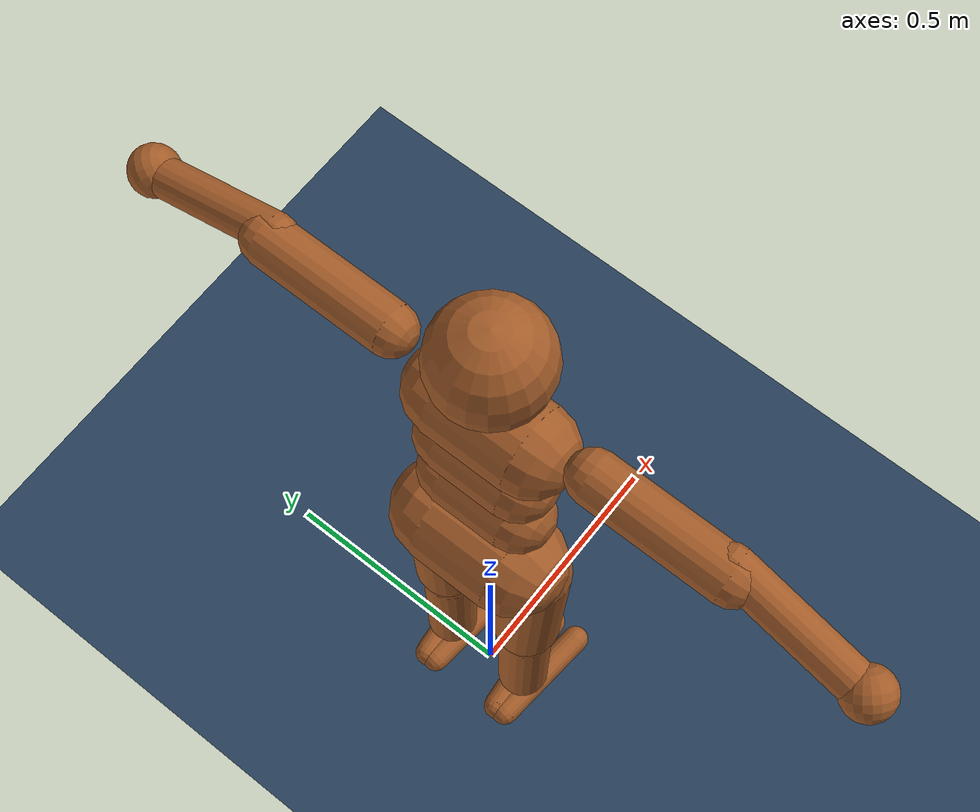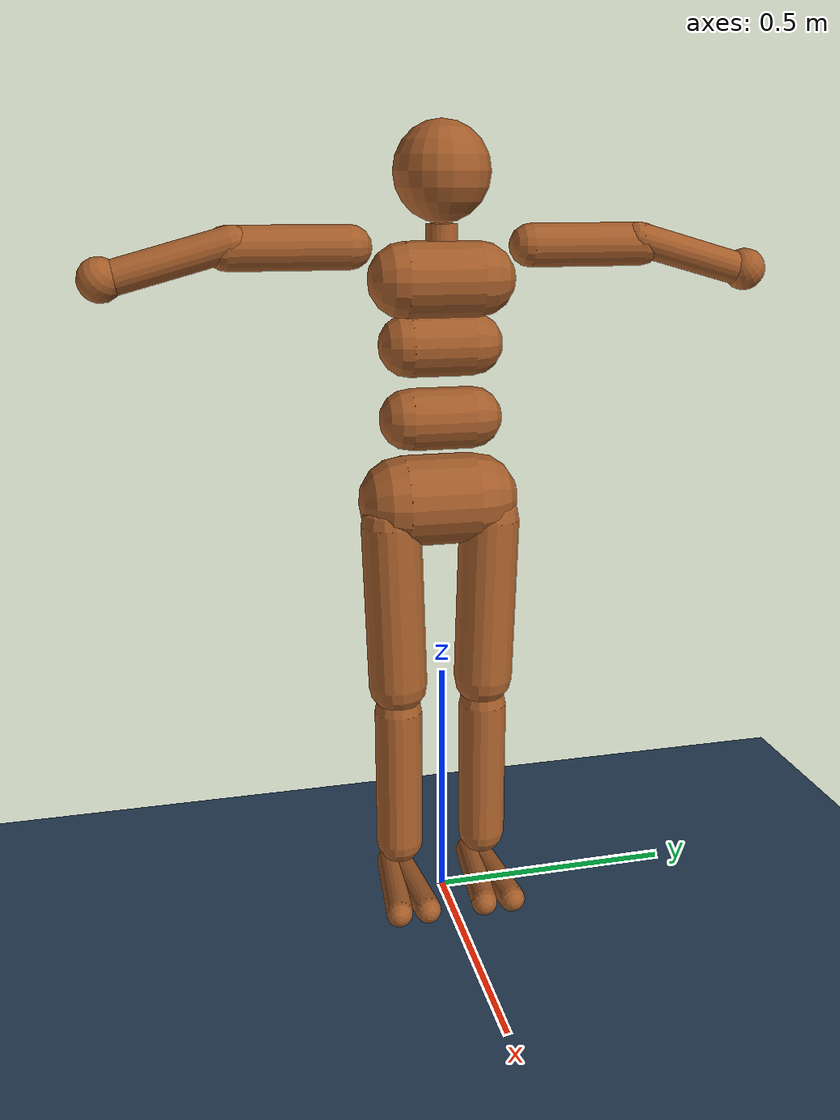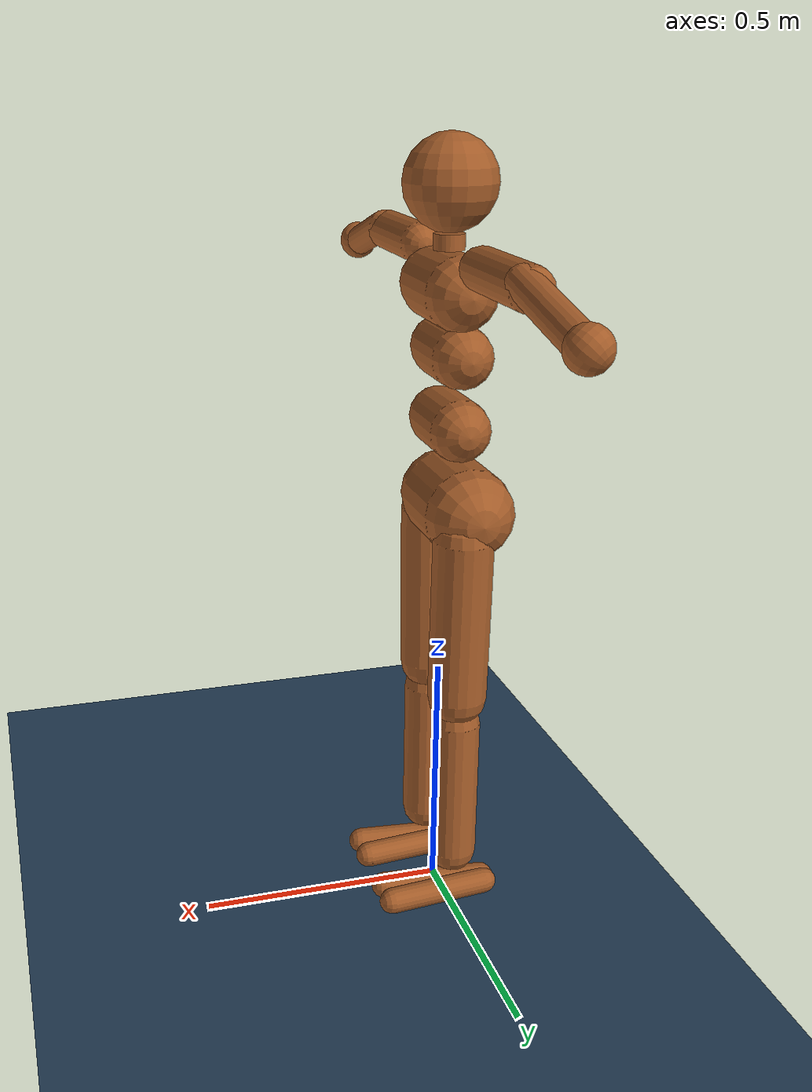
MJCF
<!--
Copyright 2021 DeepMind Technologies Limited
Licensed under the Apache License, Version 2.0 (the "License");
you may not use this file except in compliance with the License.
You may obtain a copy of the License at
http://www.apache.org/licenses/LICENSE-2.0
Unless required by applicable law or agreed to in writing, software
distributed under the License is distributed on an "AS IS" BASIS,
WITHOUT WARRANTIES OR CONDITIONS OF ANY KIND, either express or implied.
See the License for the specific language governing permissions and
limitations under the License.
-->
<mujoco model="Mannequin">
  <!-- Static humanoid model with all joints removed -->
  <option timestep="0.005"/>

  <visual>
    <map force="0.1" zfar="30"/>
    <rgba haze="0.15 0.25 0.35 1"/>
    <global offwidth="2560" offheight="1440" elevation="-20" azimuth="120"/>
  </visual>

  <statistic center="0 0 0.7"/>

  <asset>
    <texture type="skybox" builtin="gradient" rgb1=".3 .5 .7" rgb2="0 0 0" width="32" height="512"/>
    <texture name="body" type="cube" builtin="flat" mark="cross" width="128" height="128" rgb1="0.8 0.6 0.4" rgb2="0.8 0.6 0.4" markrgb="1 1 1" random="0.01"/>
    <material name="body" texture="body" texuniform="true" rgba="0.8 0.6 .4 1"/>
    <texture name="grid" type="2d" builtin="checker" width="512" height="512" rgb1=".1 .2 .3" rgb2=".2 .3 .4"/>
    <material name="grid" texture="grid" texrepeat="1 1" texuniform="true" reflectance=".2"/>
  </asset>

  <default>
    <motor ctrlrange="-1 1" ctrllimited="true"/>
    <default class="body">

      <!-- geoms -->
      <geom type="capsule" condim="1" friction=".7" solimp=".9 .99 .003" solref=".003 1" material="body"/>
      <default class="thigh">
        <geom size=".06"/>
      </default>
      <default class="shin">
        <geom fromto="0 0 0 0 0 -.3"  size=".049"/>
      </default>
      <default class="foot">
        <geom size=".027"/>
        <default class="foot1">
          <geom fromto="-.07 -.01 0 .14 -.03 0"/>
        </default>
        <default class="foot2">
          <geom fromto="-.07 .01 0 .14  .03 0"/>
        </default>
      </default>
      <default class="arm_upper">
        <geom size=".04"/>
      </default>
      <default class="arm_lower">
        <geom size=".031"/>
      </default>
      <default class="hand">
        <geom type="sphere" size=".04"/>
      </default>

      <!-- joints -->
      <joint type="hinge" damping=".2" stiffness="1" armature=".01" limited="true" solimplimit="0 .99 .01"/>
      <default class="joint_big">
        <joint damping="5" stiffness="10"/>
        <default class="hip_x">
          <joint range="-30 10"/>
        </default>
        <default class="hip_z">
          <joint range="-60 35"/>
        </default>
        <default class="hip_y">
          <joint axis="0 1 0" range="-150 20"/>
        </default>
        <default class="joint_big_stiff">
          <joint stiffness="20"/>
        </default>
      </default>
      <default class="knee">
        <joint pos="0 0 .02" axis="0 -1 0" range="-160 2"/>
      </default>
      <default class="ankle">
        <joint range="-50 50"/>
        <default class="ankle_y">
          <joint pos="0 0 .08" axis="0 1 0" stiffness="6"/>
        </default>
        <default class="ankle_x">
          <joint pos="0 0 .04" stiffness="3"/>
        </default>
      </default>
      <default class="shoulder">
        <joint range="-85 60"/>
      </default>
      <default class="elbow">
        <joint range="-100 50" stiffness="0"/>
      </default>
    </default>
  </default>

  <worldbody>
    <geom name="floor" size="0 0 .05" type="plane" material="grid" condim="3"/>
    <light name="spotlight" mode="targetbodycom" target="torso" diffuse=".8 .8 .8" specular="0.3 0.3 0.3" pos="0 -6 4" cutoff="30"/>
    <body name="torso" pos="0 0 1.282" childclass="body">
      <light name="top" pos="0 0 2" mode="trackcom"/>
      <camera name="back" pos="-3 0 1" xyaxes="0 -1 0 1 0 2" mode="trackcom"/>
      <camera name="side" pos="0 -3 1" xyaxes="1 0 0 0 1 2" mode="trackcom"/>
      <freejoint name="root"/>
      <geom name="torso" fromto="0 -.07 0 0 .07 0" size=".07"/>
      <geom name="waist_upper" fromto="-.01 -.06 -.12 -.01 .06 -.12" size=".06"/>
      <body name="head" pos="0 0 .19">
        <geom name="head" type="sphere" size=".09"/>
        <camera name="egocentric" pos=".09 0 0" xyaxes="0 -1 0 .1 0 1" fovy="80"/>
      </body>
      <body name="neck">
        <geom type="cylinder" size=".03" fromto="0 0 .07 0 0 .1"/>
      </body>
      <body name="waist_lower" pos="-.01 0 -.26">
        <geom name="waist_lower" fromto="0 -.06 0 0 .06 0" size=".06"/>
        <body name="pelvis" pos="0 0 -.165">
          <geom name="butt" fromto="-.02 -.07 0 -.02 .07 0" size=".09"/>
          <body name="thigh_right" pos="0 -.1 -.04">
            <geom name="thigh_right" fromto="0 0 0 0 .01 -.34" class="thigh"/>
            <body name="shin_right" pos="0 .01 -.4">
              <geom name="shin_right" class="shin"/>
              <body name="foot_right" pos="0 0 -.39">
                <geom name="foot1_right" class="foot1"/>
                <geom name="foot2_right" class="foot2"/>
              </body>
            </body>
          </body>
          <body name="thigh_left" pos="0 .1 -.04">
            <geom name="thigh_left" fromto="0 0 0 0 -.01 -.34" class="thigh"/>
            <body name="shin_left" pos="0 -.01 -.4">
              <geom name="shin_left" fromto="0 0 0 0 0 -.3" class="shin"/>
              <body name="foot_left" pos="0 0 -.39">
                <geom name="foot1_left" class="foot1"/>
                <geom name="foot2_left" class="foot2"/>
              </body>
            </body>
          </body>
        </body>
      </body>
      <body name="upper_arm_right" pos="0 -.17 .06">
        <geom name="upper_arm_right" fromto="0 0 0 0 -.22 0" class="arm_upper"/>
        <body name="lower_arm_right" pos="0 -.22 0">
          <geom name="lower_arm_right" fromto=".01 .01 .01 0 -.21 -.05" class="arm_lower"/>
          <body name="hand_right" pos="0 -.22 -.05">
            <geom name="hand_right" zaxis="1 1 1" class="hand"/>
          </body>
        </body>
      </body>
      <body name="upper_arm_left" pos="0 .17 .06">
        <geom name="upper_arm_left" fromto="0 0 0 0 .22 0" class="arm_upper"/>
        <body name="lower_arm_left" pos="0 .22 0">
          <geom name="lower_arm_left" fromto=".01 -.01 .01 0 .21 -.05" class="arm_lower"/>
          <body name="hand_left" pos="0 .22 -.05">
            <geom name="hand_left" zaxis="1 -1 1" class="hand"/>
          </body>
        </body>
      </body>
    </body>
  </worldbody>

  <contact>
    <exclude body1="waist_lower" body2="thigh_right"/>
    <exclude body1="waist_lower" body2="thigh_left"/>
  </contact>

</mujoco>
